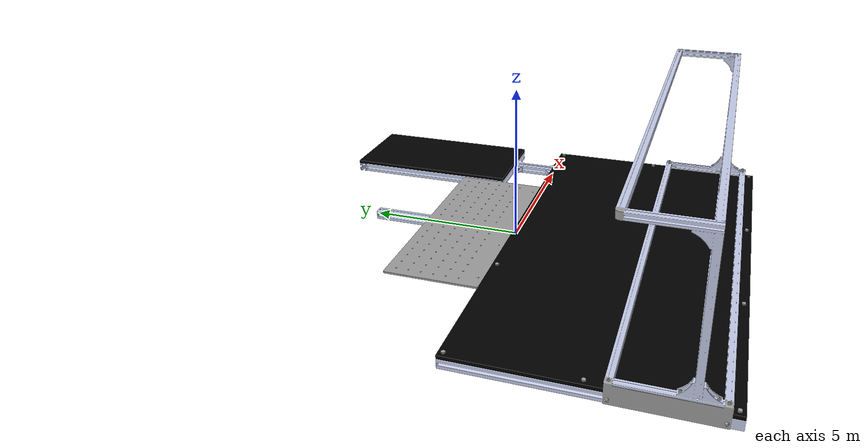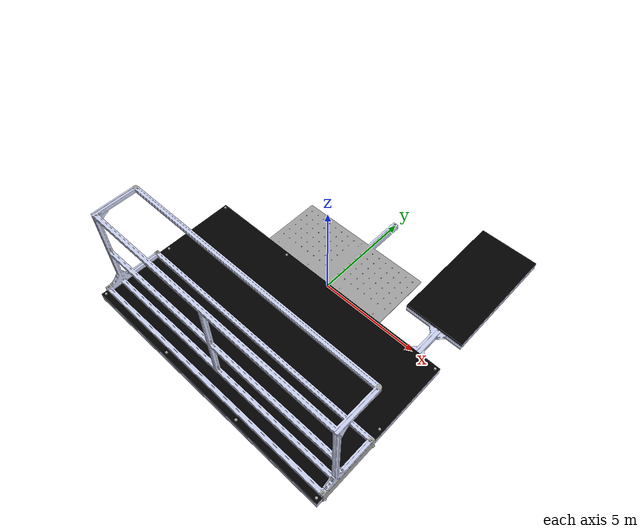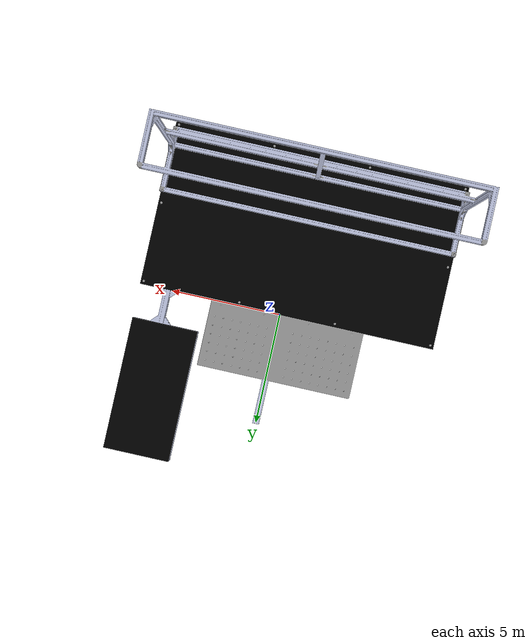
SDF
<?xml version="1.0" ?>
<sdf version="1.8">
    <world name="catch-robo">
        <physics name="1ms" type="ignored">
            <max_step_size>0.001</max_step_size>
            <real_time_factor>1.0</real_time_factor>
        </physics>
        <plugin
            filename="libignition-gazebo-physics-system.so"
            name="ignition::gazebo::systems::Physics">
        </plugin>
        <plugin
            filename="libignition-gazebo-user-commands-system.so"
            name="ignition::gazebo::systems::UserCommands">
        </plugin>
        <plugin
            filename="libignition-gazebo-scene-broadcaster-system.so"
            name="ignition::gazebo::systems::SceneBroadcaster">
        </plugin>

        <light type="directional" name="sun">
            <cast_shadows>true</cast_shadows>
            <pose>0 0 10 0 0 0</pose>
            <diffuse>0.8 0.8 0.8 1</diffuse>
            <specular>0.2 0.2 0.2 1</specular>
            <attenuation>
                <range>1000</range>
                <constant>0.9</constant>
                <linear>0.01</linear>
                <quadratic>0.001</quadratic>
            </attenuation>
            <direction>-0.5 0.1 -0.9</direction>
        </light>

        <model name="field">
          <static>1</static>
          <include>
            <uri>model://field</uri>
          </include>
        </model>

    </world>
</sdf>

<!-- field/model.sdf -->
<sdf version="1.6">
  <model name="measurement">
    <static>true</static>

    <link name="link">
      <collision name="collision">
        <geometry>
          <mesh>
            <scale>1 1 1</scale>
            <uri>model://field/meshes/catch_field.stl</uri>
          </mesh>
        </geometry>

        <surface>
          <friction>
            <ode>
              <mu>1.2</mu>
              <mu2>1.2</mu2>
            </ode>
          </friction>
        </surface>
      </collision>

      <visual name="visual">
        <geometry>
          <mesh>
            <scale>1 1 1</scale>
            <uri>model://field/meshes/catch_field.dae</uri>
          </mesh>
        </geometry>
      </visual>
    </link>

  </model>
</sdf>
